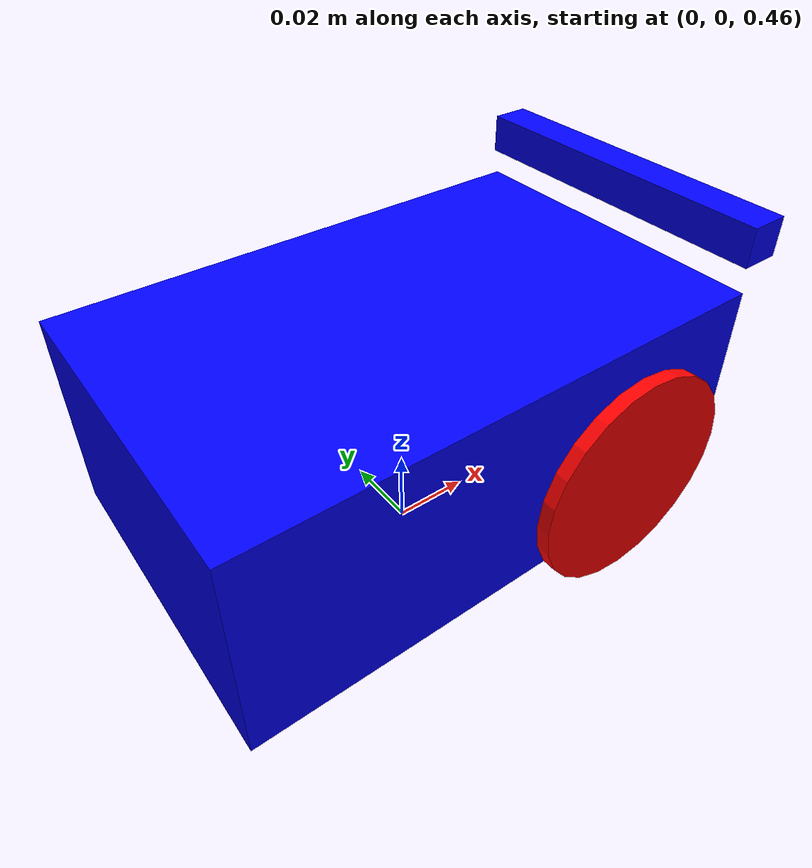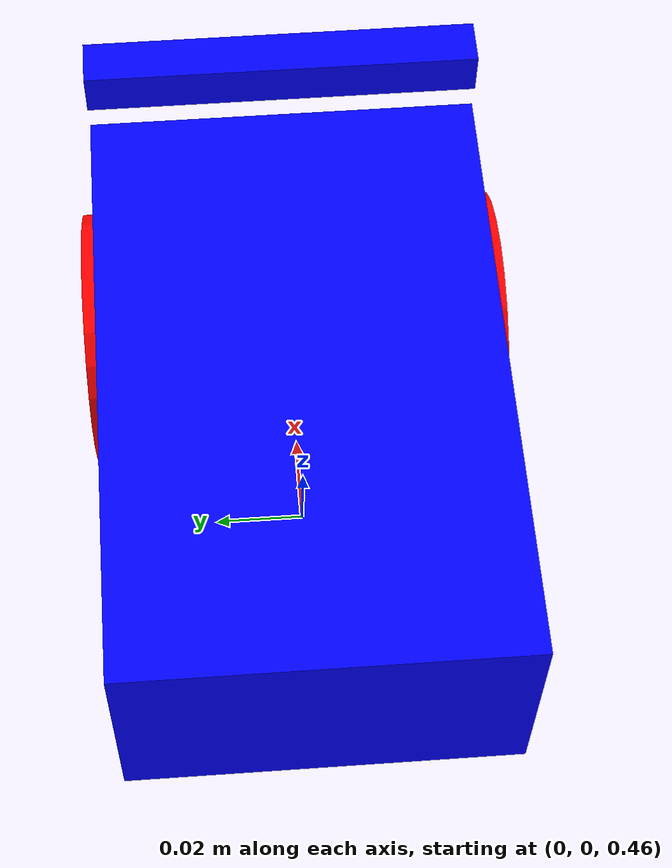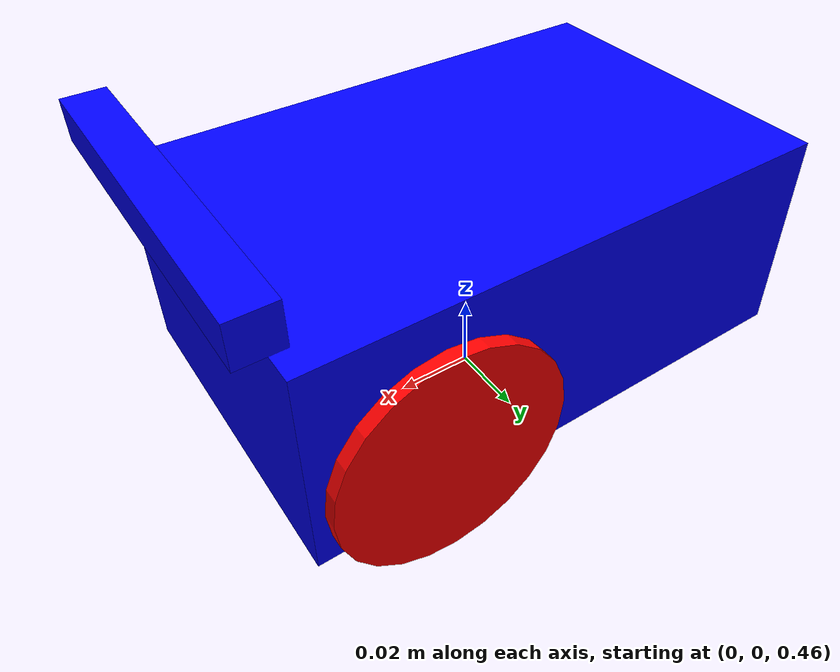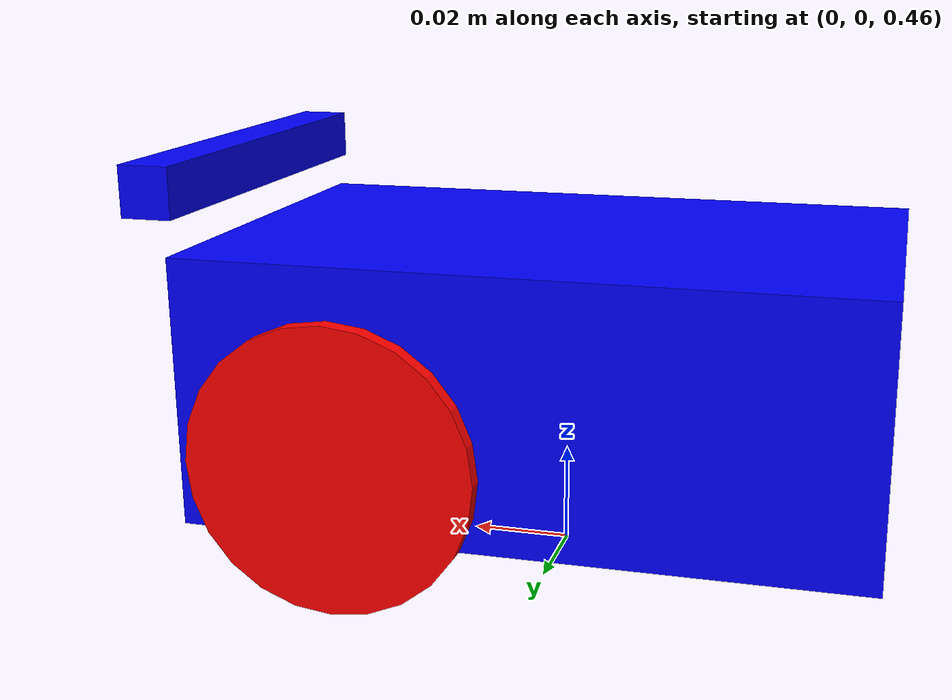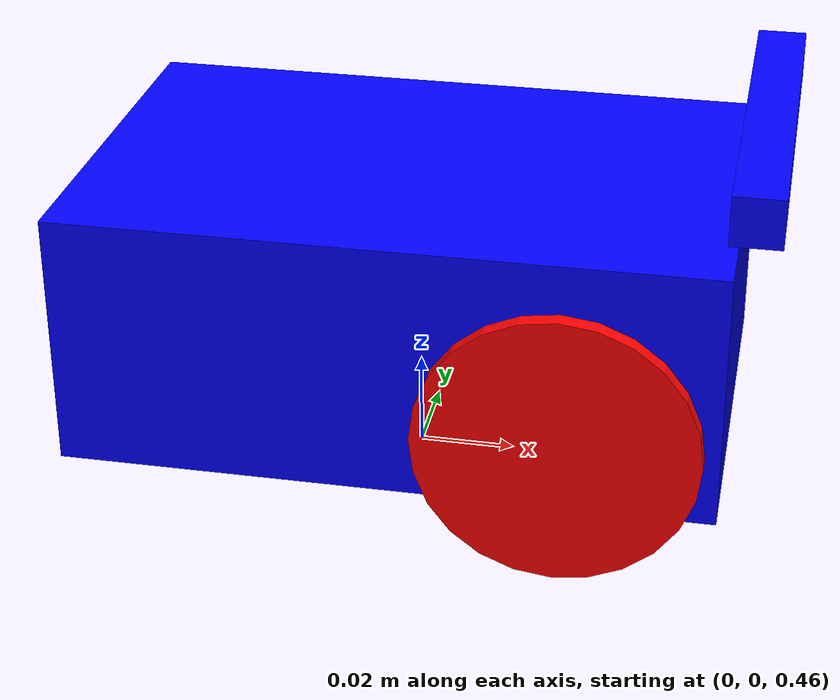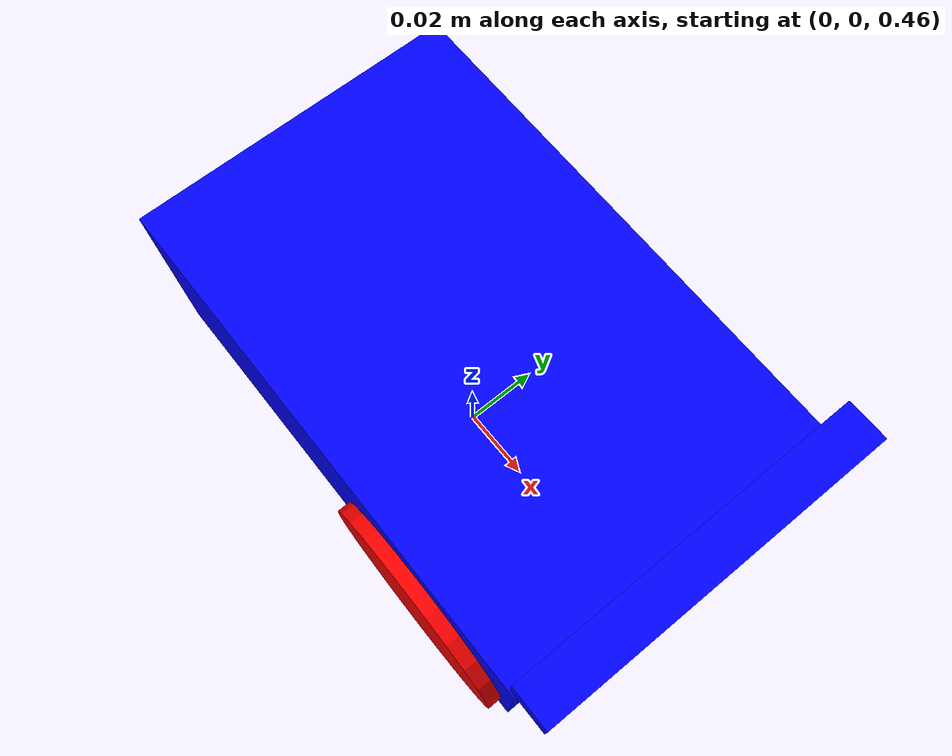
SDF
<sdf version="1.5">
 <world name="default">
  <scene>
   <sky><clouds><speed>12</speed></clouds></sky>
   <ambient>0.95 0.95 0.95 1</ambient>
   <background>0.3 0.3 0.3 1</background>
   <shadows>true</shadows>
  </scene>
  <include><uri>model://sun</uri></include>
  <spherical_coordinates>
   <surface_model>EARTH_WGS84</surface_model>
   <latitude_deg>37.413534</latitude_deg>
   <longitude_deg>-121.996561</longitude_deg>
   <elevation>1.3</elevation>
  </spherical_coordinates>
  <physics name="default_physics" default="0" type="ode">
   <gravity>0 0 -9.8066</gravity>
   <ode>
    <solver>
     <type>quick</type>
     <iters>10</iters>
     <sor>1.3</sor>
     <use_dynamic_moi_rescaling>0</use_dynamic_moi_rescaling>
    </solver>
    <constraints>
     <cfm>0</cfm>
     <erp>0.2</erp>
     <contact_max_correcting_vel>100</contact_max_correcting_vel>
     <contact_surface_layer>0.001</contact_surface_layer>
    </constraints>
   </ode>
   <max_step_size>0.004</max_step_size>
   <real_time_factor>1</real_time_factor>
   <real_time_update_rate>250</real_time_update_rate>
   <magnetic_field>6.0e-6 2.3e-5 -4.2e-5</magnetic_field>
  </physics>
  <model name="jetson" canonical_link="base_link">
   <link name="cameraChassis">
    <pose relative_to="base_link">0.07 0 0.0385 0 -0 0</pose>
    <inertial>
     <mass>0.038</mass>
     <inertia><ixx>1e-06</ixx><ixy>0</ixy><ixz>0</ixz><iyy>1e-06</iyy><iyz>0</iyz><izz>1e-06</izz></inertia>
    </inertial>
    <visual name="visual">
     <geometry><box><size>0.01 0.085 0.01</size></box></geometry>
     <material><ambient>0 0 1 1</ambient><diffuse>0 0 1 1</diffuse><specular>0 0 1 1</specular></material>
    </visual>
    <collision name="collision"><geometry><box><size>0.01 0.085 0.01</size></box></geometry></collision>
   </link>
   <link name="base_link">
    <pose relative_to="__model__">0 0 0.5 0 -0 0</pose>
    <inertial>
     <mass>0.8</mass>
     <inertia><ixx>0.004</ixx><ixy>0</ixy><ixz>0</ixz><iyy>0.004</iyy><iyz>0</iyz><izz>0.004</izz></inertia>
    </inertial>
    <visual name="visual">
     <geometry><box><size>0.133 0.085 0.053</size></box></geometry>
     <material><ambient>0 0 1 1</ambient><diffuse>0 0 1 1</diffuse><specular>0 0 1 1</specular></material>
    </visual>
    <collision name="collision"><geometry><box><size>0.133 0.085 0.053</size></box></geometry></collision>
    <sensor name="camera/left" type="camera">
     <pose relative_to="camera_chassis">0.0665 0.03649 0.0395 0 -0 0</pose>
     <topic>camera/left/</topic>
     <camera>
      <horizontal_fov>2.70526</horizontal_fov>
      <image><width>500</width><height>300</height><format>L8</format></image>
      <clip><near>0.1</near><far>100</far></clip>
      <lens>
       <intrinsics>
        <fx>307.99879313442784</fx>
        <fy>328.57751082369407</fy>
        <cx>280.24657373225784</cx>
        <cy>134.9335316514946</cy>
        <s>0</s>
       </intrinsics>
       <projection>
        <p_fx>312.8884288345382</p_fx>
        <p_fy>312.8884288345382</p_fy>
        <p_cx>312.28302001953125</p_cx>
        <p_cy>135.72957611083984</p_cy>
        <tx>0.0</tx>
        <ty>0.0</ty>
       </projection>
      </lens>
     </camera>
     <always_on>1</always_on>
     <update_rate>4</update_rate>
     <visualize>1</visualize>
     <plugin name="camera_left_controller" filename="libgazebo_ros_camera.so">
      <frame_name>camera_left</frame_name>
     </plugin>
    </sensor>
    <sensor name="camera/right" type="camera">
     <pose relative_to="camera_chassis">0.0665 -0.03649 0.0395 0 -0 0</pose>
     <topic>camera/right/</topic>
     <camera>
      <horizontal_fov>2.70526</horizontal_fov>
      <image><width>500</width><height>300</height><format>L8</format></image>
      <clip><near>0.1</near><far>100</far></clip>
      <lens>
       <intrinsics>
        <fx>307.1754049460059</fx>
        <fy>328.803046449949</fy>
        <cx>265.74658118131305</cx>
        <cy>141.73334383034592</cy>
        <s>0</s>
       </intrinsics>
       <projection>
        <p_fx>312.8884288345382</p_fx>
        <p_fy>312.8884288345382</p_fy>
        <p_cx>312.28302001953125</p_cx>
        <p_cy>135.72957611083984</p_cy>
        <tx>-22.834775948524072</tx>
        <ty>0.0</ty>
       </projection>
      </lens>
     </camera>
     <always_on>1</always_on>
     <update_rate>4</update_rate>
     <visualize>1</visualize>
     <plugin name="camera_right_controller" filename="libgazebo_ros_camera.so">
      <frame_name>camera_right</frame_name>
     </plugin>
    </sensor>
    <plugin name="camera_right_controller" filename="libgazebo_ros_camera.so">
     <frame_name>cameraRight</frame_name>
    </plugin>
   </link>
   <link name="leftWheel">
    <pose relative_to="base_link">0.035 0.044 -0.012 -1.5707 0 0</pose>
    <inertial>
     <mass>0.017</mass>
     <inertia><ixx>1e-06</ixx><ixy>0</ixy><ixz>0</ixz><iyy>1e-06</iyy><iyz>0</iyz><izz>1e-06</izz></inertia>
    </inertial>
    <visual name="visual">
     <geometry><cylinder><radius>0.0285</radius><length>0.004</length></cylinder></geometry>
     <material><ambient>1 0 0 1</ambient><diffuse>1 0 0 1</diffuse><specular>1 0 0 1</specular></material>
    </visual>
    <collision name="collision">
     <geometry>
      <cylinder><radius>0.0285</radius><length>0.004</length></cylinder>
      <surface><friction><ode><mu>0.8</mu><mu2>0.8</mu2></ode></friction></surface>
     </geometry>
    </collision>
   </link>
   <link name="rightWheel">
    <pose relative_to="base_link">0.035 -0.044 -0.012 -1.5707 0 0</pose>
    <inertial>
     <mass>0.017</mass>
     <inertia><ixx>2e-05</ixx><ixy>0</ixy><ixz>0</ixz><iyy>2e-05</iyy><iyz>0</iyz><izz>4.1e-05</izz></inertia>
    </inertial>
    <visual name="visual">
     <geometry>
      <cylinder><radius>0.0285</radius><length>0.004</length></cylinder>
      <surface><friction><ode><mu>0.8</mu><mu2>0.8</mu2></ode></friction></surface>
     </geometry>
     <material><ambient>1 0 0 1</ambient><diffuse>1 0 0 1</diffuse><specular>1 0 0 1</specular></material>
    </visual>
    <collision name="collision">
     <geometry>
      <cylinder><radius>0.0285</radius><length>0.004</length></cylinder>
      <surface><friction><ode><mu>0.8</mu><mu2>0.8</mu2></ode></friction></surface>
     </geometry>
    </collision>
   </link>
   <frame name="caster_frame" attached_to="base_link"><pose>-0.05 0 -0.0271 0 -0 0</pose></frame>
   <link name="caster">
    <pose relative_to="caster_frame">0 0 0 0 -0 0</pose>
    <inertial>
     <mass>0.005</mass>
     <inertia><ixx>1e-06</ixx><ixy>0</ixy><ixz>0</ixz><iyy>1e-06</iyy><iyz>0</iyz><izz>1e-06</izz></inertia>
    </inertial>
    <visual name="visual">
     <geometry><sphere><radius>0.0113</radius></sphere></geometry>
     <material><ambient>0 1 0 1</ambient><diffuse>0 1 0 1</diffuse><specular>0 1 0 1</specular></material>
    </visual>
    <collision name="collision"><geometry><sphere><radius>0.0113</radius></sphere></geometry></collision>
   </link>
   <joint name="cam_joint" type="fixed">
    <pose relative_to="base_link">0 0 0 0 -0 0</pose>
    <parent>base_link</parent>
    <child>cameraChassis</child>
    <axis>
     <xyz expressed_in="__model__">1 0 0</xyz>
     <limit><lower>-1.79769e+308</lower><upper>1.79769e+308</upper></limit>
    </axis>
   </joint>
   <joint name="leftWheel_joint" type="revolute">
    <pose relative_to="leftWheel">0 0 0 0 -0 0</pose>
    <parent>base_link</parent>
    <child>leftWheel</child>
    <axis>
     <xyz expressed_in="__model__">0 1 0</xyz>
     <limit><lower>-1.79769e+308</lower><upper>1.79769e+308</upper></limit>
     <dynamics><spring_reference>0</spring_reference><spring_stiffness>0</spring_stiffness></dynamics>
    </axis>
   </joint>
   <joint name="rightWheel_joint" type="revolute">
    <pose relative_to="rightWheel">0 0 0 0 -0 0</pose>
    <parent>base_link</parent>
    <child>rightWheel</child>
    <axis>
     <xyz expressed_in="__model__">0 1 0</xyz>
     <limit><lower>-1.79769e+308</lower><upper>1.79769e+308</upper></limit>
     <dynamics><spring_reference>0</spring_reference><spring_stiffness>0</spring_stiffness></dynamics>
    </axis>
   </joint>
   <joint name="caster_wheel" type="ball"><parent>base_link</parent><child>caster</child></joint>
   <plugin name="differential_drive_controller" filename="libgazebo_ros_diff_drive.so">
    <left_joint>leftWheel_joint</left_joint>
    <right_joint>rightWheel_joint</right_joint>
    <wheel_separation>0.08</wheel_separation>
    <wheel_diameter>0.057</wheel_diameter>
    <max_wheel_acceleration>1</max_wheel_acceleration>
    <max_wheel_torque>2</max_wheel_torque>
    <command_topic>cmd_vel</command_topic>
   </plugin>
   <sensor name="imu_sensor" type="imu">
    <pose>0.0083 -0.04141 0.077 0 0 1.57079632679</pose>
    <always_on>1</always_on>
    <update_rate>50</update_rate>
    <imu><topic>imu/data</topic></imu>
    <plugin name="imu_plugin" filename="libgazebo_ros_imu.so">
     <robotNamespace>/robot</robotNamespace>
     <topicName>imu</topicName>
     <bodyName>base_link</bodyName>
    </plugin>
   </sensor>
  </model>
 </world>
</sdf>
